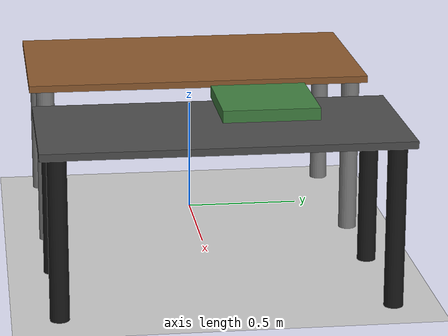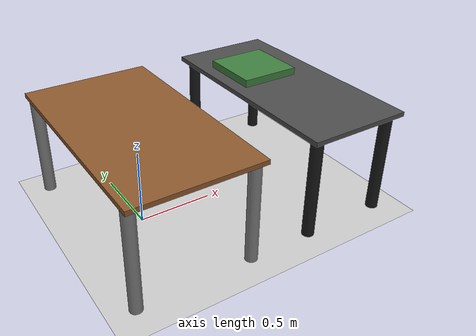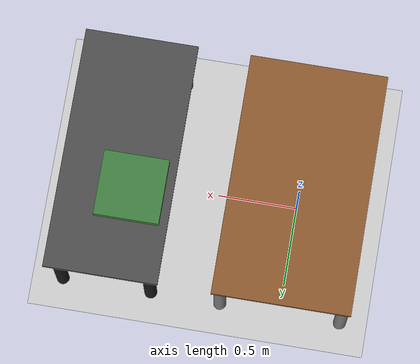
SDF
<sdf version="1.6">
 <world name="default">
  <plugin filename="gz-sim-physics-system" name="gz::sim::systems::Physics"/>
  <plugin filename="gz-sim-user-commands-system" name="gz::sim::systems::UserCommands"/>
  <plugin filename="gz-sim-scene-broadcaster-system" name="gz::sim::systems::SceneBroadcaster"/>
  <plugin filename="gz-sim-sensors-system" name="gz::sim::systems::Sensors">
   <render_engine>ogre2</render_engine>
  </plugin>
  <light type="directional" name="sun">
   <pose>0 0 10 0 0 0</pose>
   <diffuse>0.8 0.8 0.8 1</diffuse>
   <specular>0.2 0.2 0.2 1</specular>
   <attenuation>
    <range>1000</range>
    <constant>0.9</constant>
    <linear>0.01</linear>
    <quadratic>0.001</quadratic>
   </attenuation>
   <direction>-0.5 0.1 -0.9</direction>
  </light>
  <model name="ground_plane">
   <static>true</static>
   <link name="link">
    <collision name="collision">
     <geometry><plane><normal>0 0 1</normal><size>100 100</size></plane></geometry>
    </collision>
    <visual name="visual">
     <geometry><plane><normal>0 0 1</normal><size>100 100</size></plane></geometry>
     <material>
      <ambient>0.8 0.8 0.8 1</ambient>
      <diffuse>0.8 0.8 0.8 1</diffuse>
      <specular>0.8 0.8 0.8 1</specular>
     </material>
    </visual>
   </link>
  </model>
  <include>
   <uri>file:///ros2_ws/install/spraying_pathways/share/spraying_pathways/models/wood_table</uri>
   <pose>0 0 0 0 0 1.5708</pose>
  </include>
  <include>
   <uri>file:///ros2_ws/install/spraying_pathways/share/spraying_pathways/models/black_table</uri>
   <pose>1.1 0 0 0 0 1.5708</pose>
  </include>
  <include>
   <uri>file:///ros2_ws/install/spraying_pathways/share/spraying_pathways/models/box_0_5</uri>
   <pose>1.0 0.2 0.77 0 0 0</pose>
  </include>
 </world>
</sdf>

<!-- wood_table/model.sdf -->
<sdf version='1.7'>
  <model name='wood_table'>
    <static>1</static>
    <link name='link'>
      <collision name='surface'>
        <pose>0 0 0.7 0 -0 0</pose>
        <geometry>
          <box>
            <size>1.5 0.85 0.03</size>
          </box>
        </geometry>
        <surface>
          <friction>
            <ode>
              <mu>0.6</mu>
              <mu2>0.6</mu2>
            </ode>
          </friction>
        </surface>
      </collision>
      <visual name='visual1'>
        <pose>0 0 0.7 0 -0 0</pose>
        <geometry>
          <box>
            <size>1.5 0.85 0.03</size>
          </box>
        </geometry>
        <material>
          <ambient>0.45 0.30 0.15 1</ambient>
          <diffuse>0.55 0.35 0.18 1</diffuse>
          <specular>0.1 0.1 0.1 1</specular>
        </material>
      </visual>
      <collision name='front_left_leg'>
        <pose>0.68 0.38 0.35 0 -0 0</pose>
        <geometry>
          <cylinder>
            <radius>0.04</radius>
            <length>0.7</length>
          </cylinder>
        </geometry>
      </collision>
      <visual name='front_left_leg'>
        <pose>0.68 0.38 0.35 0 -0 0</pose>
        <geometry>
          <cylinder>
            <radius>0.04</radius>
            <length>0.7</length>
          </cylinder>
        </geometry>
        <material>
          <ambient>0.5 0.5 0.5 1</ambient>
          <diffuse>0.5 0.5 0.5 1</diffuse>
          <specular>0.2 0.2 0.2 1</specular>
        </material>
      </visual>
      <collision name='front_right_leg'>
        <pose>0.68 -0.38 0.35 0 -0 0</pose>
        <geometry>
          <cylinder>
            <radius>0.04</radius>
            <length>0.7</length>
          </cylinder>
        </geometry>
      </collision>
      <visual name='front_right_leg'>
        <pose>0.68 -0.38 0.35 0 -0 0</pose>
        <geometry>
          <cylinder>
            <radius>0.04</radius>
            <length>0.7</length>
          </cylinder>
        </geometry>
        <material>
          <ambient>0.5 0.5 0.5 1</ambient>
          <diffuse>0.5 0.5 0.5 1</diffuse>
          <specular>0.2 0.2 0.2 1</specular>
        </material>
      </visual>
      <collision name='back_right_leg'>
        <pose>-0.68 -0.38 0.35 0 -0 0</pose>
        <geometry>
          <cylinder>
            <radius>0.04</radius>
            <length>0.7</length>
          </cylinder>
        </geometry>
      </collision>
      <visual name='back_right_leg'>
        <pose>-0.68 -0.38 0.35 0 -0 0</pose>
        <geometry>
          <cylinder>
            <radius>0.04</radius>
            <length>0.7</length>
          </cylinder>
        </geometry>
        <material>
          <ambient>0.5 0.5 0.5 1</ambient>
          <diffuse>0.5 0.5 0.5 1</diffuse>
          <specular>0.2 0.2 0.2 1</specular>
        </material>
      </visual>
      <collision name='back_left_leg'>
        <pose>-0.68 0.38 0.35 0 -0 0</pose>
        <geometry>
          <cylinder>
            <radius>0.04</radius>
            <length>0.7</length>
          </cylinder>
        </geometry>
      </collision>
      <visual name='back_left_leg'>
        <pose>-0.68 0.38 0.35 0 -0 0</pose>
        <geometry>
          <cylinder>
            <radius>0.04</radius>
            <length>0.7</length>
          </cylinder>
        </geometry>
        <material>
          <ambient>0.5 0.5 0.5 1</ambient>
          <diffuse>0.5 0.5 0.5 1</diffuse>
          <specular>0.2 0.2 0.2 1</specular>
        </material>
      </visual>
    </link>
    <pose>4e-06 -1e-06 -0 0 -0 0</pose>
  </model>
</sdf>

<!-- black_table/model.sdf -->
<sdf version='1.7'>
  <model name='black_table'>
    <static>1</static>
    <link name='link'>
      <collision name='surface'>
        <pose>0 0 0.7 0 -0 0</pose>
        <geometry>
          <box>
            <size>1.5 0.7 0.03</size>
          </box>
        </geometry>
        <surface>
          <friction>
            <ode>
              <mu>0.6</mu>
              <mu2>0.6</mu2>
            </ode>
          </friction>
        </surface>
      </collision>
      <visual name='visual1'>
        <pose>0 0 0.7 0 -0 0</pose>
        <geometry>
          <box>
            <size>1.5 0.7 0.03</size>
          </box>
        </geometry>
        <material>
          <ambient>0.2 0.2 0.2 1</ambient>
          <diffuse>0.3 0.3 0.3 1</diffuse>
          <specular>0.6 0.6 0.6 1</specular>
          <emissive>0 0 0 1</emissive>
        </material>
      </visual>
      <collision name='front_left_leg'>
        <pose>0.68 0.28 0.35 0 -0 0</pose>
        <geometry>
          <cylinder>
            <radius>0.04</radius>
            <length>0.7</length>
          </cylinder>
        </geometry>
      </collision>
      <visual name='front_left_leg'>
        <pose>0.68 0.28 0.35 0 -0 0</pose>
        <geometry>
          <cylinder>
            <radius>0.04</radius>
            <length>0.7</length>
          </cylinder>
        </geometry>
        <material>
          <ambient>0.1 0.1 0.1 1</ambient>
          <diffuse>0.1 0.1 0.1 1</diffuse>
          <specular>0.2 0.2 0.2 1</specular>
        </material>
      </visual>
      <collision name='front_right_leg'>
        <pose>0.68 -0.28 0.35 0 -0 0</pose>
        <geometry>
          <cylinder>
            <radius>0.04</radius>
            <length>0.7</length>
          </cylinder>
        </geometry>
      </collision>
      <visual name='front_right_leg'>
        <pose>0.68 -0.28 0.35 0 -0 0</pose>
        <geometry>
          <cylinder>
            <radius>0.04</radius>
            <length>0.7</length>
          </cylinder>
        </geometry>
        <material>
          <ambient>0.1 0.1 0.1 1</ambient>
          <diffuse>0.1 0.1 0.1 1</diffuse>
          <specular>0.2 0.2 0.2 1</specular>
        </material>
      </visual>
      <collision name='back_right_leg'>
        <pose>-0.68 -0.28 0.35 0 -0 0</pose>
        <geometry>
          <cylinder>
            <radius>0.04</radius>
            <length>0.7</length>
          </cylinder>
        </geometry>
      </collision>
      <visual name='back_right_leg'>
        <pose>-0.68 -0.28 0.35 0 -0 0</pose>
        <geometry>
          <cylinder>
            <radius>0.04</radius>
            <length>0.7</length>
          </cylinder>
        </geometry>
        <material>
          <ambient>0.1 0.1 0.1 1</ambient>
          <diffuse>0.1 0.1 0.1 1</diffuse>
          <specular>0.2 0.2 0.2 1</specular>
        </material>
      </visual>
      <collision name='back_left_leg'>
        <pose>-0.68 0.28 0.35 0 -0 0</pose>
        <geometry>
          <cylinder>
            <radius>0.04</radius>
            <length>0.7</length>
          </cylinder>
        </geometry>
      </collision>
      <visual name='back_left_leg'>
        <pose>-0.68 0.28 0.35 0 -0 0</pose>
        <geometry>
          <cylinder>
            <radius>0.04</radius>
            <length>0.7</length>
          </cylinder>
        </geometry>
        <material>
          <ambient>0.1 0.1 0.1 1</ambient>
          <diffuse>0.1 0.1 0.1 1</diffuse>
          <specular>0.2 0.2 0.2 1</specular>
        </material>
      </visual>
    </link>
    <pose>4e-06 -1e-06 -0 0 -0 0</pose>
  </model>
</sdf>

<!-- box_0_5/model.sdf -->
<sdf version='1.7'>
  <model name='box_0_5'>
    <link name='link_0'>
      <inertial>
        <mass>1</mass>
        <inertia>
          <ixx>0.166667</ixx>
          <ixy>0</ixy>
          <ixz>0</ixz>
          <iyy>0.166667</iyy>
          <iyz>0</iyz>
          <izz>0.166667</izz>
        </inertia>
        <pose>0 0 0 0 -0 0</pose>
      </inertial>
      <pose>0 0 0 0 -0 0</pose>
      <gravity>1</gravity>
      <self_collide>0</self_collide>
      <kinematic>0</kinematic>
      <enable_wind>0</enable_wind>
      <visual name='visual'>
        <pose>0 0 0 0 -0 0</pose>
        <geometry>
          <box>
            <size>0.4 0.4 0.05</size>
          </box>
        </geometry>
        <material>
          <ambient>0.2 0.45 0.2 1</ambient>
          <diffuse>0.25 0.5 0.25 1</diffuse>
          <specular>0.1 0.1 0.1 1</specular>
        </material>
        <transparency>0</transparency>
        <cast_shadows>1</cast_shadows>
      </visual>
      <collision name='collision'>
        <laser_retro>0</laser_retro>
        <max_contacts>10</max_contacts>
        <pose>0 0 0 0 -0 0</pose>
        <geometry>
          <box>
            <size>0.4 0.4 0.05</size>
          </box>
        </geometry>
        <surface>
          <friction>
            <ode>
              <mu>1</mu>
              <mu2>1</mu2>
              <fdir1>0 0 0</fdir1>
              <slip1>0</slip1>
              <slip2>0</slip2>
            </ode>
            <torsional>
              <coefficient>1</coefficient>
              <patch_radius>0</patch_radius>
              <surface_radius>0</surface_radius>
              <use_patch_radius>1</use_patch_radius>
              <ode>
                <slip>0</slip>
              </ode>
            </torsional>
          </friction>
          <bounce>
            <restitution_coefficient>0</restitution_coefficient>
            <threshold>1e+06</threshold>
          </bounce>
          <contact>
            <collide_without_contact>0</collide_without_contact>
            <collide_without_contact_bitmask>1</collide_without_contact_bitmask>
            <collide_bitmask>1</collide_bitmask>
            <ode>
              <soft_cfm>0</soft_cfm>
              <soft_erp>0.2</soft_erp>
              <kp>1e+13</kp>
              <kd>1</kd>
              <max_vel>0.01</max_vel>
              <min_depth>0</min_depth>
            </ode>
            <bullet>
              <split_impulse>1</split_impulse>
              <split_impulse_penetration_threshold>-0.01</split_impulse_penetration_threshold>
              <soft_cfm>0</soft_cfm>
              <soft_erp>0.2</soft_erp>
              <kp>1e+13</kp>
              <kd>1</kd>
            </bullet>
          </contact>
        </surface>
      </collision>
    </link>
    <static>0</static>
    <allow_auto_disable>1</allow_auto_disable>
  </model>
</sdf>
